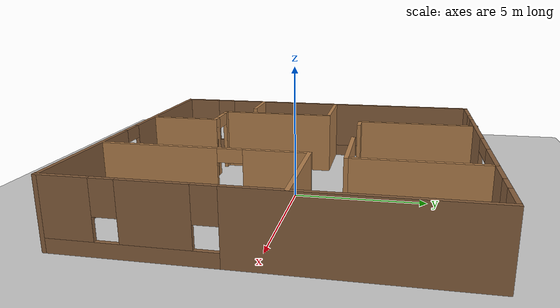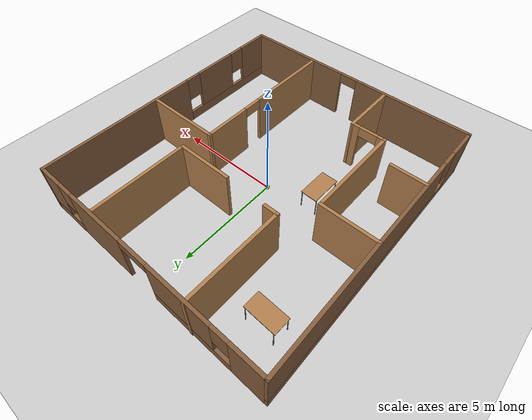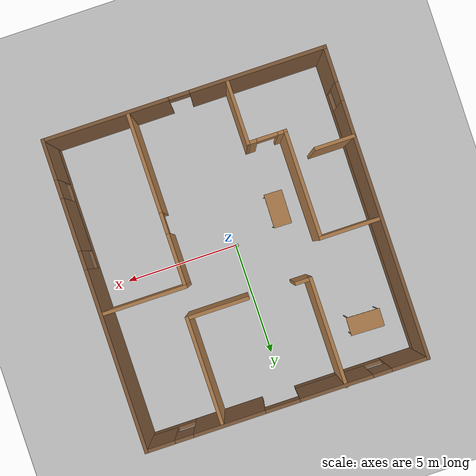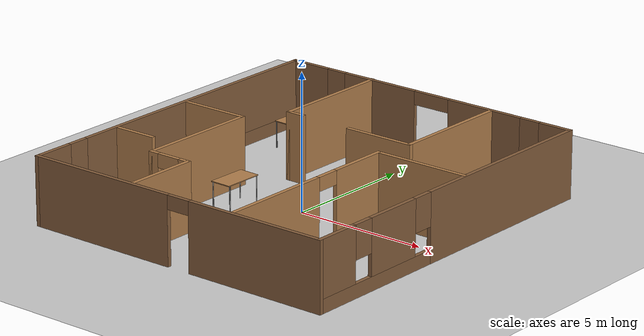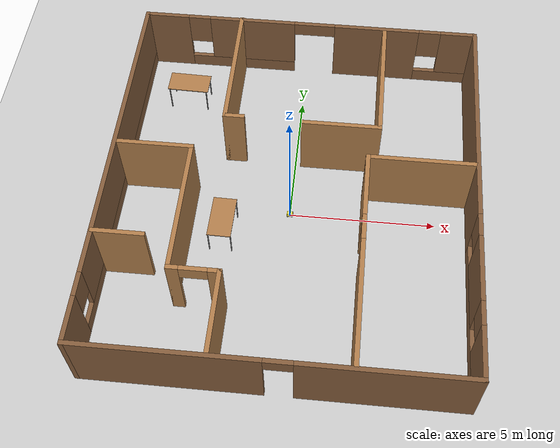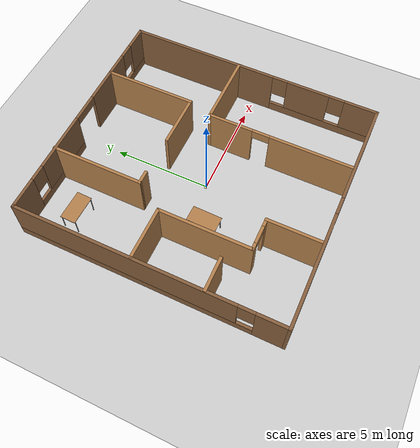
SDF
<sdf version="1.7">
 <world name="default">
  <light name="sun" type="directional">
   <pose>0 0 10 0 -0 0</pose>
   <diffuse>0.8 0.8 0.8 1</diffuse>
   <specular>0.2 0.2 0.2 1</specular>
   <attenuation>
    <range>1000</range>
    <constant>0.9</constant>
    <linear>0.01</linear>
    <quadratic>0.001</quadratic>
   </attenuation>
   <direction>-0.5 0.1 -0.9</direction>
   <spot><inner_angle>0</inner_angle><outer_angle>0</outer_angle><falloff>0</falloff></spot>
  </light>
  <model name="ground_plane">
   <static>1</static>
   <link name="link">
    <collision name="collision">
     <geometry><plane><normal>0 0 1</normal><size>100 100</size></plane></geometry>
     <surface><friction><ode><mu>100</mu><mu2>50</mu2></ode></friction></surface>
    </collision>
    <visual name="visual">
     <cast_shadows>0</cast_shadows>
     <geometry><plane><normal>0 0 1</normal><size>100 100</size></plane></geometry>
     <material>
      <script><uri>file://media/materials/scripts/gazebo.material</uri><name>Gazebo/Grey</name></script>
     </material>
    </visual>
   </link>
  </model>
  <gravity>0 0 -9.8</gravity>
  <magnetic_field>6e-06 2.3e-05 -4.2e-05</magnetic_field>
  <atmosphere type="adiabatic"/>
  <physics type="ode">
   <max_step_size>0.001</max_step_size>
   <real_time_factor>1</real_time_factor>
   <real_time_update_rate>1000</real_time_update_rate>
  </physics>
  <scene><ambient>0.4 0.4 0.4 1</ambient><background>0.7 0.7 0.7 1</background><shadows>1</shadows></scene>
  <audio><device>default</device></audio>
  <spherical_coordinates>
   <surface_model>EARTH_WGS84</surface_model>
   <latitude_deg>0</latitude_deg>
   <longitude_deg>0</longitude_deg>
   <elevation>0</elevation>
   <heading_deg>0</heading_deg>
  </spherical_coordinates>
  <model name="lds_robot">
   <link name="base_footprint">
    <inertial>
     <pose>0 0 0.050382 0 -0 0</pose>
     <mass>5.101</mass>
     <inertia>
      <ixx>0.0102322</ixx>
      <ixy>0</ixy>
      <ixz>0</ixz>
      <iyy>0.0102322</iyy>
      <iyz>0</iyz>
      <izz>0.01036</izz>
     </inertia>
    </inertial>
    <collision name="base_footprint_collision">
     <geometry><sphere><radius>0.001</radius></sphere></geometry>
    </collision>
    <collision name="base_footprint_fixed_joint_lump__base_link_collision_1">
     <pose>0 0 0.05 0 -0 0</pose>
     <geometry><box><size>0.2 0.12 0.15</size></box></geometry>
    </collision>
    <collision name="base_footprint_fixed_joint_lump__imu_link_collision_2">
     <pose>0 0 0.07 0 -0 0</pose>
     <geometry><box><size>0.02 0.02 0.02</size></box></geometry>
    </collision>
    <visual name="base_footprint_visual"><geometry><sphere><radius>0.001</radius></sphere></geometry></visual>
    <visual name="base_footprint_fixed_joint_lump__base_link_visual_1">
     <pose>0 0 0.05 0 -0 0</pose>
     <geometry><box><size>0.2 0.12 0.15</size></box></geometry>
     <material>
      <script><name>Gazebo/Yellow</name><uri>file://media/materials/scripts/gazebo.material</uri></script>
     </material>
    </visual>
    <visual name="base_footprint_fixed_joint_lump__camera_visual_2">
     <pose>0.1 0 0.05 0 -0 0</pose>
     <geometry><box><size>0.02 0.05 0.02</size></box></geometry>
     <material>
      <script><name>Gazebo/Red</name><uri>file://media/materials/scripts/gazebo.material</uri></script>
     </material>
    </visual>
    <visual name="base_footprint_fixed_joint_lump__imu_link_visual_3">
     <pose>0 0 0.07 0 -0 0</pose>
     <geometry><box><size>0.02 0.02 0.02</size></box></geometry>
    </visual>
    <visual name="base_footprint_fixed_joint_lump__laser_visual_4">
     <pose>0 0 0.14 0 -0 0</pose>
     <geometry><cylinder><length>0.03</length><radius>0.03</radius></cylinder></geometry>
     <material>
      <script><name>Gazebo/Black</name><uri>file://media/materials/scripts/gazebo.material</uri></script>
     </material>
    </visual>
    <sensor name="camera1" type="camera">
     <update_rate>30</update_rate>
     <camera name="head">
      <horizontal_fov>1.39626</horizontal_fov>
      <image><width>800</width><height>800</height><format>R8G8B8</format></image>
      <clip><near>0.02</near><far>300</far></clip>
      <noise><type>gaussian</type><mean>0</mean><stddev>0.007</stddev></noise>
     </camera>
     <plugin name="camera_controller" filename="libgazebo_ros_camera.so">
      <alwaysOn>1</alwaysOn>
      <updateRate>0.0</updateRate>
      <cameraName>rrbot/camera1</cameraName>
      <imageTopicName>image_raw</imageTopicName>
      <cameraInfoTopicName>camera_info</cameraInfoTopicName>
      <frameName>camera_link</frameName>
      <hackBaseline>0.07</hackBaseline>
      <distortionK1>0.0</distortionK1>
      <distortionK2>0.0</distortionK2>
      <distortionK3>0.0</distortionK3>
      <distortionT1>0.0</distortionT1>
      <distortionT2>0.0</distortionT2>
     </plugin>
     <pose>0.1 0 0.05 0 -0 0</pose>
    </sensor>
    <sensor name="imu_sensor" type="imu">
     <plugin name="imu_plugin" filename="libgazebo_ros_imu_sensor.so">
      <ros><namespace>/</namespace><remapping>~/out:=imu</remapping></ros>
      <initial_orientation_as_reference>0</initial_orientation_as_reference>
     </plugin>
     <always_on>1</always_on>
     <update_rate>100</update_rate>
     <visualize>1</visualize>
     <imu>
      <angular_velocity>
       <x>
        <noise type="gaussian">
         <mean>0</mean>
         <stddev>0.0002</stddev>
         <bias_mean>7.5e-06</bias_mean>
         <bias_stddev>8e-07</bias_stddev>
        </noise>
       </x>
       <y>
        <noise type="gaussian">
         <mean>0</mean>
         <stddev>0.0002</stddev>
         <bias_mean>7.5e-06</bias_mean>
         <bias_stddev>8e-07</bias_stddev>
        </noise>
       </y>
       <z>
        <noise type="gaussian">
         <mean>0</mean>
         <stddev>0.0002</stddev>
         <bias_mean>7.5e-06</bias_mean>
         <bias_stddev>8e-07</bias_stddev>
        </noise>
       </z>
      </angular_velocity>
      <linear_acceleration>
       <x>
        <noise type="gaussian">
         <mean>0</mean>
         <stddev>0.017</stddev>
         <bias_mean>0.1</bias_mean>
         <bias_stddev>0.001</bias_stddev>
        </noise>
       </x>
       <y>
        <noise type="gaussian">
         <mean>0</mean>
         <stddev>0.017</stddev>
         <bias_mean>0.1</bias_mean>
         <bias_stddev>0.001</bias_stddev>
        </noise>
       </y>
       <z>
        <noise type="gaussian">
         <mean>0</mean>
         <stddev>0.017</stddev>
         <bias_mean>0.1</bias_mean>
         <bias_stddev>0.001</bias_stddev>
        </noise>
       </z>
      </linear_acceleration>
     </imu>
     <pose>0 0 0.07 0 -0 0</pose>
    </sensor>
    <sensor name="laser_sensor" type="ray">
     <always_on>1</always_on>
     <visualize>1</visualize>
     <update_rate>5</update_rate>
     <ray>
      <scan>
       <horizontal>
        <samples>360</samples>
        <resolution>1</resolution>
        <min_angle>0</min_angle>
        <max_angle>6.28</max_angle>
       </horizontal>
       <vertical><samples>1</samples><min_angle>0</min_angle><max_angle>0</max_angle></vertical>
      </scan>
      <range><min>0.12</min><max>3.5</max><resolution>0.015</resolution></range>
      <noise><type>gaussian</type><mean>0</mean><stddev>0.01</stddev></noise>
     </ray>
     <plugin name="laserscan" filename="libgazebo_ros_ray_sensor.so">
      <ros><remapping>~/out:=scan</remapping></ros>
      <output_type>sensor_msgs/LaserScan</output_type>
      <frame_name>laser</frame_name>
     </plugin>
     <pose>0 0 0.14 0 -0 0</pose>
    </sensor>
   </link>
   <joint name="back_left_wheel_joint" type="revolute">
    <pose relative_to="base_footprint">-0.075 0.06 -0.015 0 -0 0</pose>
    <parent>base_footprint</parent>
    <child>back_left_wheel</child>
    <axis>
     <xyz>0 1 0</xyz>
     <limit><lower>-1e+16</lower><upper>1e+16</upper></limit>
     <dynamics><spring_reference>0</spring_reference><spring_stiffness>0</spring_stiffness></dynamics>
    </axis>
   </joint>
   <link name="back_left_wheel">
    <pose relative_to="back_left_wheel_joint">0 0 0 0 -0 0</pose>
    <inertial>
     <mass>0.2</mass>
     <inertia>
      <ixx>0.000190417</ixx>
      <ixy>0</ixy>
      <ixz>0</ixz>
      <iyy>0.0001904</iyy>
      <iyz>0</iyz>
      <izz>0.00036</izz>
     </inertia>
    </inertial>
    <collision name="back_left_wheel_collision">
     <pose>0 0 0 1.57 -0 0</pose>
     <geometry><cylinder><length>0.02</length><radius>0.025</radius></cylinder></geometry>
    </collision>
    <visual name="back_left_wheel_visual">
     <pose>0 0 0 1.57 -0 0</pose>
     <geometry><cylinder><length>0.02</length><radius>0.025</radius></cylinder></geometry>
     <material>
      <script><name>Gazebo/Black</name><uri>file://media/materials/scripts/gazebo.material</uri></script>
     </material>
    </visual>
   </link>
   <joint name="back_right_wheel_joint" type="revolute">
    <pose relative_to="base_footprint">-0.075 -0.06 -0.015 0 -0 0</pose>
    <parent>base_footprint</parent>
    <child>back_right_wheel</child>
    <axis>
     <xyz>0 1 0</xyz>
     <limit><lower>-1e+16</lower><upper>1e+16</upper></limit>
     <dynamics><spring_reference>0</spring_reference><spring_stiffness>0</spring_stiffness></dynamics>
    </axis>
   </joint>
   <link name="back_right_wheel">
    <pose relative_to="back_right_wheel_joint">0 0 0 0 -0 0</pose>
    <inertial>
     <mass>0.2</mass>
     <inertia>
      <ixx>0.000190417</ixx>
      <ixy>0</ixy>
      <ixz>0</ixz>
      <iyy>0.0001904</iyy>
      <iyz>0</iyz>
      <izz>0.00036</izz>
     </inertia>
    </inertial>
    <collision name="back_right_wheel_collision">
     <pose>0 0 0 1.57 -0 0</pose>
     <geometry><cylinder><length>0.02</length><radius>0.025</radius></cylinder></geometry>
    </collision>
    <visual name="back_right_wheel_visual">
     <pose>0 0 0 1.57 -0 0</pose>
     <geometry><cylinder><length>0.02</length><radius>0.025</radius></cylinder></geometry>
     <material>
      <script><name>Gazebo/Black</name><uri>file://media/materials/scripts/gazebo.material</uri></script>
     </material>
    </visual>
   </link>
   <joint name="front_left_wheel_joint" type="revolute">
    <pose relative_to="base_footprint">0.075 0.06 -0.015 0 -0 0</pose>
    <parent>base_footprint</parent>
    <child>front_left_wheel</child>
    <axis>
     <xyz>0 1 0</xyz>
     <limit><lower>-1e+16</lower><upper>1e+16</upper></limit>
     <dynamics><spring_reference>0</spring_reference><spring_stiffness>0</spring_stiffness></dynamics>
    </axis>
   </joint>
   <link name="front_left_wheel">
    <pose relative_to="front_left_wheel_joint">0 0 0 0 -0 0</pose>
    <inertial>
     <mass>0.2</mass>
     <inertia>
      <ixx>0.000190417</ixx>
      <ixy>0</ixy>
      <ixz>0</ixz>
      <iyy>0.0001904</iyy>
      <iyz>0</iyz>
      <izz>0.00036</izz>
     </inertia>
    </inertial>
    <collision name="front_left_wheel_collision">
     <pose>0 0 0 1.57 -0 0</pose>
     <geometry><cylinder><length>0.02</length><radius>0.025</radius></cylinder></geometry>
    </collision>
    <visual name="front_left_wheel_visual">
     <pose>0 0 0 1.57 -0 0</pose>
     <geometry><cylinder><length>0.02</length><radius>0.025</radius></cylinder></geometry>
     <material>
      <script><name>Gazebo/Black</name><uri>file://media/materials/scripts/gazebo.material</uri></script>
     </material>
    </visual>
   </link>
   <joint name="front_right_wheel_joint" type="revolute">
    <pose relative_to="base_footprint">0.075 -0.06 -0.015 0 -0 0</pose>
    <parent>base_footprint</parent>
    <child>front_right_wheel</child>
    <axis>
     <xyz>0 1 0</xyz>
     <limit><lower>-1e+16</lower><upper>1e+16</upper></limit>
     <dynamics><spring_reference>0</spring_reference><spring_stiffness>0</spring_stiffness></dynamics>
    </axis>
   </joint>
   <link name="front_right_wheel">
    <pose relative_to="front_right_wheel_joint">0 0 0 0 -0 0</pose>
    <inertial>
     <mass>0.2</mass>
     <inertia>
      <ixx>0.000190417</ixx>
      <ixy>0</ixy>
      <ixz>0</ixz>
      <iyy>0.0001904</iyy>
      <iyz>0</iyz>
      <izz>0.00036</izz>
     </inertia>
    </inertial>
    <collision name="front_right_wheel_collision">
     <pose>0 0 0 1.57 -0 0</pose>
     <geometry><cylinder><length>0.02</length><radius>0.025</radius></cylinder></geometry>
    </collision>
    <visual name="front_right_wheel_visual">
     <pose>0 0 0 1.57 -0 0</pose>
     <geometry><cylinder><length>0.02</length><radius>0.025</radius></cylinder></geometry>
     <material>
      <script><name>Gazebo/Black</name><uri>file://media/materials/scripts/gazebo.material</uri></script>
     </material>
    </visual>
   </link>
   <plugin name="front_diff_drive" filename="libgazebo_ros_diff_drive.so">
    <left_joint>front_left_wheel_joint</left_joint>
    <right_joint>front_right_wheel_joint</right_joint>
    <wheel_separation>0.064</wheel_separation>
    <wheel_diameter>0.05</wheel_diameter>
    <max_wheel_torque>200</max_wheel_torque>
    <max_wheel_acceleration>10.0</max_wheel_acceleration>
    <odometry_frame>odom</odometry_frame>
    <robot_base_frame>base_footprint</robot_base_frame>
    <publish_odom>1</publish_odom>
    <publish_odom_tf>1</publish_odom_tf>
    <publish_wheel_tf>1</publish_wheel_tf>
   </plugin>
   <static>0</static>
   <plugin name="back_diff_drive" filename="libgazebo_ros_diff_drive.so">
    <left_joint>back_left_wheel_joint</left_joint>
    <right_joint>back_right_wheel_joint</right_joint>
    <wheel_separation>0.064</wheel_separation>
    <wheel_diameter>0.05</wheel_diameter>
    <max_wheel_torque>200</max_wheel_torque>
    <max_wheel_acceleration>10.0</max_wheel_acceleration>
    <odometry_frame>odom</odometry_frame>
    <robot_base_frame>base_footprint</robot_base_frame>
    <publish_odom>1</publish_odom>
    <publish_odom_tf>1</publish_odom_tf>
    <publish_wheel_tf>1</publish_wheel_tf>
   </plugin>
   <pose>-0.005937 0.006447 0.040007 1.7e-05 2e-06 0.000673</pose>
  </model>
  <model name="norsing_home">
   <pose>0.077966 0.174221 0 0 -0 0</pose>
   <link name="Wall_0">
    <pose>0 6.65961 0 0 -0 0</pose>
    <visual name="Wall_0_Visual_0">
     <pose>-5.3111 0 1.25 0 -0 0</pose>
     <geometry><box><size>1.62779 0.15 2.5</size></box></geometry>
     <material>
      <script><uri>file://media/materials/scripts/gazebo.material</uri><name>Gazebo/Grey</name></script>
      <ambient>0.52549 0.368627 0.235294 1</ambient>
     </material>
     <meta><layer>0</layer></meta>
    </visual>
    <collision name="Wall_0_Collision_0">
     <geometry><box><size>1.62779 0.15 2.5</size></box></geometry>
     <pose>-5.3111 0 1.25 0 -0 0</pose>
    </collision>
    <visual name="Wall_0_Visual_1">
     <pose>2.47144 0 1.25 0 -0 0</pose>
     <geometry><box><size>3.08683 0.15 2.5</size></box></geometry>
     <material>
      <script><uri>file://media/materials/scripts/gazebo.material</uri><name>Gazebo/Grey</name></script>
      <ambient>0.52549 0.368627 0.235294 1</ambient>
     </material>
     <meta><layer>0</layer></meta>
    </visual>
    <collision name="Wall_0_Collision_1">
     <geometry><box><size>3.08683 0.15 2.5</size></box></geometry>
     <pose>2.47144 0 1.25 0 -0 0</pose>
    </collision>
    <visual name="Wall_0_Visual_2">
     <pose>-2.52719 0 0.25 0 -0 0</pose>
     <geometry><box><size>3.94003 0.15 0.5</size></box></geometry>
     <material>
      <script><uri>file://media/materials/scripts/gazebo.material</uri><name>Gazebo/Grey</name></script>
      <ambient>0.52549 0.368627 0.235294 1</ambient>
     </material>
     <meta><layer>0</layer></meta>
    </visual>
    <collision name="Wall_0_Collision_2">
     <geometry><box><size>3.94003 0.15 0.5</size></box></geometry>
     <pose>-2.52719 0 0.25 0 -0 0</pose>
    </collision>
    <visual name="Wall_0_Visual_3">
     <pose>5.06993 0 0.25 0 -0 0</pose>
     <geometry><box><size>2.11014 0.15 0.5</size></box></geometry>
     <material>
      <script><uri>file://media/materials/scripts/gazebo.material</uri><name>Gazebo/Grey</name></script>
      <ambient>0.52549 0.368627 0.235294 1</ambient>
     </material>
     <meta><layer>0</layer></meta>
    </visual>
    <collision name="Wall_0_Collision_3">
     <geometry><box><size>2.11014 0.15 0.5</size></box></geometry>
     <pose>5.06993 0 0.25 0 -0 0</pose>
    </collision>
    <visual name="Wall_0_Visual_4">
     <pose>-2.12719 0 1.5 0 -0 0</pose>
     <geometry><box><size>3.14003 0.15 2</size></box></geometry>
     <material>
      <script><uri>file://media/materials/scripts/gazebo.material</uri><name>Gazebo/Grey</name></script>
      <ambient>0.52549 0.368627 0.235294 1</ambient>
     </material>
     <meta><layer>0</layer></meta>
    </visual>
    <collision name="Wall_0_Collision_4">
     <geometry><box><size>3.14003 0.15 2</size></box></geometry>
     <pose>-2.12719 0 1.5 0 -0 0</pose>
    </collision>
    <visual name="Wall_0_Visual_5">
     <pose>-2.12719 0 1.5 0 -0 0</pose>
     <geometry><box><size>3.14003 0.15 2</size></box></geometry>
     <material>
      <script><uri>file://media/materials/scripts/gazebo.material</uri><name>Gazebo/Grey</name></script>
      <ambient>0.52549 0.368627 0.235294 1</ambient>
     </material>
     <meta><layer>0</layer></meta>
    </visual>
    <collision name="Wall_0_Collision_5">
     <geometry><box><size>3.14003 0.15 2</size></box></geometry>
     <pose>-2.12719 0 1.5 0 -0 0</pose>
    </collision>
    <visual name="Wall_0_Visual_6">
     <pose>5.46993 0 1.5 0 -0 0</pose>
     <geometry><box><size>1.31014 0.15 2</size></box></geometry>
     <material>
      <script><uri>file://media/materials/scripts/gazebo.material</uri><name>Gazebo/Grey</name></script>
      <ambient>0.52549 0.368627 0.235294 1</ambient>
     </material>
     <meta><layer>0</layer></meta>
    </visual>
    <collision name="Wall_0_Collision_6">
     <geometry><box><size>1.31014 0.15 2</size></box></geometry>
     <pose>5.46993 0 1.5 0 -0 0</pose>
    </collision>
    <visual name="Wall_0_Visual_7">
     <pose>-4.09721 0 1.9 0 -0 0</pose>
     <geometry><box><size>0.8 0.15 1.2</size></box></geometry>
     <material>
      <script><uri>file://media/materials/scripts/gazebo.material</uri><name>Gazebo/Grey</name></script>
      <ambient>0.52549 0.368627 0.235294 1</ambient>
     </material>
     <meta><layer>0</layer></meta>
    </visual>
    <collision name="Wall_0_Collision_7">
     <geometry><box><size>0.8 0.15 1.2</size></box></geometry>
     <pose>-4.09721 0 1.9 0 -0 0</pose>
    </collision>
    <visual name="Wall_0_Visual_8">
     <pose>4.41486 0 1.9 0 -0 0</pose>
     <geometry><box><size>0.8 0.15 1.2</size></box></geometry>
     <material>
      <script><uri>file://media/materials/scripts/gazebo.material</uri><name>Gazebo/Grey</name></script>
      <ambient>0.52549 0.368627 0.235294 1</ambient>
     </material>
     <meta><layer>0</layer></meta>
    </visual>
    <collision name="Wall_0_Collision_8">
     <geometry><box><size>0.8 0.15 1.2</size></box></geometry>
     <pose>4.41486 0 1.9 0 -0 0</pose>
    </collision>
    <visual name="Wall_0_Visual_9">
     <pose>0.185425 0 2.25 0 -0 0</pose>
     <geometry><box><size>1.4852 0.15 0.5</size></box></geometry>
     <material>
      <script><uri>file://media/materials/scripts/gazebo.material</uri><name>Gazebo/Grey</name></script>
      <ambient>0.52549 0.368627 0.235294 1</ambient>
     </material>
     <meta><layer>0</layer></meta>
    </visual>
    <collision name="Wall_0_Collision_9">
     <geometry><box><size>1.4852 0.15 0.5</size></box></geometry>
     <pose>0.185425 0 2.25 0 -0 0</pose>
    </collision>
    <visual name="Wall_0_Visual_10">
     <pose>0.185425 0 2.25 0 -0 0</pose>
     <geometry><box><size>1.4852 0.15 0.5</size></box></geometry>
     <material>
      <script><uri>file://media/materials/scripts/gazebo.material</uri><name>Gazebo/Grey</name></script>
      <ambient>0.52549 0.368627 0.235294 1</ambient>
     </material>
     <meta><layer>0</layer></meta>
    </visual>
    <collision name="Wall_0_Collision_10">
     <geometry><box><size>1.4852 0.15 0.5</size></box></geometry>
     <pose>0.185425 0 2.25 0 -0 0</pose>
    </collision>
   </link>
   <link name="Wall_1">
    <pose>6.05 -0.015386 0 0 -0 -1.5708</pose>
    <visual name="Wall_1_Visual_0">
     <pose>-2.81232 0 1.25 0 -0 0</pose>
     <geometry><box><size>7.87536 0.15 2.5</size></box></geometry>
     <material>
      <script><uri>file://media/materials/scripts/gazebo.material</uri><name>Gazebo/Grey</name></script>
      <ambient>0.52549 0.368627 0.235294 1</ambient>
     </material>
     <meta><layer>0</layer></meta>
    </visual>
    <collision name="Wall_1_Collision_0">
     <geometry><box><size>7.87536 0.15 2.5</size></box></geometry>
     <pose>-2.81232 0 1.25 0 -0 0</pose>
    </collision>
    <visual name="Wall_1_Visual_1">
     <pose>3.93768 0 0.25 0 -0 0</pose>
     <geometry><box><size>5.62464 0.15 0.5</size></box></geometry>
     <material>
      <script><uri>file://media/materials/scripts/gazebo.material</uri><name>Gazebo/Grey</name></script>
      <ambient>0.52549 0.368627 0.235294 1</ambient>
     </material>
     <meta><layer>0</layer></meta>
    </visual>
    <collision name="Wall_1_Collision_1">
     <geometry><box><size>5.62464 0.15 0.5</size></box></geometry>
     <pose>3.93768 0 0.25 0 -0 0</pose>
    </collision>
    <visual name="Wall_1_Visual_2">
     <pose>3.05487 0 1.5 0 -0 0</pose>
     <geometry><box><size>2.25902 0.15 2</size></box></geometry>
     <material>
      <script><uri>file://media/materials/scripts/gazebo.material</uri><name>Gazebo/Grey</name></script>
      <ambient>0.52549 0.368627 0.235294 1</ambient>
     </material>
     <meta><layer>0</layer></meta>
    </visual>
    <collision name="Wall_1_Collision_2">
     <geometry><box><size>2.25902 0.15 2</size></box></geometry>
     <pose>3.05487 0 1.5 0 -0 0</pose>
    </collision>
    <visual name="Wall_1_Visual_3">
     <pose>5.86719 0 1.5 0 -0 0</pose>
     <geometry><box><size>1.76562 0.15 2</size></box></geometry>
     <material>
      <script><uri>file://media/materials/scripts/gazebo.material</uri><name>Gazebo/Grey</name></script>
      <ambient>0.52549 0.368627 0.235294 1</ambient>
     </material>
     <meta><layer>0</layer></meta>
    </visual>
    <collision name="Wall_1_Collision_3">
     <geometry><box><size>1.76562 0.15 2</size></box></geometry>
     <pose>5.86719 0 1.5 0 -0 0</pose>
    </collision>
    <visual name="Wall_1_Visual_4">
     <pose>1.52536 0 1.9 0 -0 0</pose>
     <geometry><box><size>0.8 0.15 1.2</size></box></geometry>
     <material>
      <script><uri>file://media/materials/scripts/gazebo.material</uri><name>Gazebo/Grey</name></script>
      <ambient>0.52549 0.368627 0.235294 1</ambient>
     </material>
     <meta><layer>0</layer></meta>
    </visual>
    <collision name="Wall_1_Collision_4">
     <geometry><box><size>0.8 0.15 1.2</size></box></geometry>
     <pose>1.52536 0 1.9 0 -0 0</pose>
    </collision>
    <visual name="Wall_1_Visual_5">
     <pose>4.58438 0 1.9 0 -0 0</pose>
     <geometry><box><size>0.8 0.15 1.2</size></box></geometry>
     <material>
      <script><uri>file://media/materials/scripts/gazebo.material</uri><name>Gazebo/Grey</name></script>
      <ambient>0.52549 0.368627 0.235294 1</ambient>
     </material>
     <meta><layer>0</layer></meta>
    </visual>
    <collision name="Wall_1_Collision_5">
     <geometry><box><size>0.8 0.15 1.2</size></box></geometry>
     <pose>4.58438 0 1.9 0 -0 0</pose>
    </collision>
   </link>
   <link name="Wall_11">
    <collision name="Wall_11_Collision">
     <geometry><box><size>1.75 0.15 2.5</size></box></geometry>
     <pose>0 0 1.25 0 -0 0</pose>
    </collision>
    <visual name="Wall_11_Visual">
     <pose>0 0 1.25 0 -0 0</pose>
     <geometry><box><size>1.75 0.15 2.5</size></box></geometry>
     <material>
      <script><uri>file://media/materials/scripts/gazebo.material</uri><name>Gazebo/Wood</name></script>
      <ambient>1 1 1 1</ambient>
     </material>
     <meta><layer>0</layer></meta>
    </visual>
    <pose>-5.21509 -2.87357 0 0 -0 0</pose>
   </link>
   <link name="Wall_13">
    <collision name="Wall_13_Collision">
     <geometry><box><size>3.75 0.15 2.5</size></box></geometry>
     <pose>0 0 1.25 0 -0 0</pose>
    </collision>
    <visual name="Wall_13_Visual">
     <pose>0 0 1.25 0 -0 0</pose>
     <geometry><box><size>3.75 0.15 2.5</size></box></geometry>
     <material>
      <script><uri>file://media/materials/scripts/gazebo.material</uri><name>Gazebo/Wood</name></script>
      <ambient>1 1 1 1</ambient>
     </material>
     <meta><layer>0</layer></meta>
    </visual>
    <pose>4.22502 0.787848 0 0 -0 3.14159</pose>
   </link>
   <link name="Wall_14">
    <pose>2.42502 -2.88715 0 0 -0 -1.5708</pose>
    <visual name="Wall_14_Visual_0">
     <pose>-2.57328 0 1.25 0 -0 0</pose>
     <geometry><box><size>2.35345 0.15 2.5</size></box></geometry>
     <material>
      <script><uri>file://media/materials/scripts/gazebo.material</uri><name>Gazebo/Wood</name></script>
      <ambient>1 1 1 1</ambient>
     </material>
     <meta><layer>0</layer></meta>
    </visual>
    <collision name="Wall_14_Collision_0">
     <geometry><box><size>2.35345 0.15 2.5</size></box></geometry>
     <pose>-2.57328 0 1.25 0 -0 0</pose>
    </collision>
    <visual name="Wall_14_Visual_1">
     <pose>1.62672 0 1.25 0 -0 0</pose>
     <geometry><box><size>4.24655 0.15 2.5</size></box></geometry>
     <material>
      <script><uri>file://media/materials/scripts/gazebo.material</uri><name>Gazebo/Wood</name></script>
      <ambient>1 1 1 1</ambient>
     </material>
     <meta><layer>0</layer></meta>
    </visual>
    <collision name="Wall_14_Collision_1">
     <geometry><box><size>4.24655 0.15 2.5</size></box></geometry>
     <pose>1.62672 0 1.25 0 -0 0</pose>
    </collision>
    <visual name="Wall_14_Visual_2">
     <pose>-0.94655 0 2.25 0 -0 0</pose>
     <geometry><box><size>0.9 0.15 0.5</size></box></geometry>
     <material>
      <script><uri>file://media/materials/scripts/gazebo.material</uri><name>Gazebo/Wood</name></script>
      <ambient>1 1 1 1</ambient>
     </material>
     <meta><layer>0</layer></meta>
    </visual>
    <collision name="Wall_14_Collision_2">
     <geometry><box><size>0.9 0.15 0.5</size></box></geometry>
     <pose>-0.94655 0 2.25 0 -0 0</pose>
    </collision>
   </link>
   <link name="Wall_16">
    <collision name="Wall_16_Collision">
     <geometry><box><size>4.75 0.15 2.5</size></box></geometry>
     <pose>0 0 1.25 0 -0 0</pose>
    </collision>
    <visual name="Wall_16_Visual">
     <pose>0 0 1.25 0 -0 0</pose>
     <geometry><box><size>4.75 0.15 2.5</size></box></geometry>
     <material>
      <script><uri>file://media/materials/scripts/gazebo.material</uri><name>Gazebo/Wood</name></script>
      <ambient>1 1 1 1</ambient>
     </material>
     <meta><layer>0</layer></meta>
    </visual>
    <pose>2.76477 4.33719 0 0 -0 -1.5708</pose>
   </link>
   <link name="Wall_17">
    <collision name="Wall_17_Collision">
     <geometry><box><size>2.75 0.15 2.5</size></box></geometry>
     <pose>0 0 1.25 0 -0 0</pose>
    </collision>
    <visual name="Wall_17_Visual">
     <pose>0 0 1.25 0 -0 0</pose>
     <geometry><box><size>2.75 0.15 2.5</size></box></geometry>
     <material>
      <script><uri>file://media/materials/scripts/gazebo.material</uri><name>Gazebo/Wood</name></script>
      <ambient>1 1 1 1</ambient>
     </material>
     <meta><layer>0</layer></meta>
    </visual>
    <pose>1.46477 2.03719 0 0 -0 3.14159</pose>
   </link>
   <link name="Wall_19">
    <collision name="Wall_19_Collision">
     <geometry><box><size>4.75 0.15 2.5</size></box></geometry>
     <pose>0 0 1.25 0 -0 0</pose>
    </collision>
    <visual name="Wall_19_Visual">
     <pose>0 0 1.25 0 -0 0</pose>
     <geometry><box><size>4.75 0.15 2.5</size></box></geometry>
     <material>
      <script><uri>file://media/materials/scripts/gazebo.material</uri><name>Gazebo/Wood</name></script>
      <ambient>1 1 1 1</ambient>
     </material>
     <meta><layer>0</layer></meta>
    </visual>
    <pose>-2.52867 4.39039 0 0 -0 -1.5708</pose>
   </link>
   <link name="Wall_2">
    <pose>0 -6.69039 0 0 -0 3.14159</pose>
    <visual name="Wall_2_Visual_0">
     <pose>-3.39351 0 1.25 0 -0 0</pose>
     <geometry><box><size>5.46297 0.15 2.5</size></box></geometry>
     <material>
      <script><uri>file://media/materials/scripts/gazebo.material</uri><name>Gazebo/Grey</name></script>
      <ambient>0.52549 0.368627 0.235294 1</ambient>
     </material>
     <meta><layer>0</layer></meta>
    </visual>
    <collision name="Wall_2_Collision_0">
     <geometry><box><size>5.46297 0.15 2.5</size></box></geometry>
     <pose>-3.39351 0 1.25 0 -0 0</pose>
    </collision>
    <visual name="Wall_2_Visual_1">
     <pose>3.18149 0 1.25 0 -0 0</pose>
     <geometry><box><size>5.88703 0.15 2.5</size></box></geometry>
     <material>
      <script><uri>file://media/materials/scripts/gazebo.material</uri><name>Gazebo/Grey</name></script>
      <ambient>0.52549 0.368627 0.235294 1</ambient>
     </material>
     <meta><layer>0</layer></meta>
    </visual>
    <collision name="Wall_2_Collision_1">
     <geometry><box><size>5.88703 0.15 2.5</size></box></geometry>
     <pose>3.18149 0 1.25 0 -0 0</pose>
    </collision>
    <visual name="Wall_2_Visual_2">
     <pose>-0.212026 0 2.25 0 -0 0</pose>
     <geometry><box><size>0.9 0.15 0.5</size></box></geometry>
     <material>
      <script><uri>file://media/materials/scripts/gazebo.material</uri><name>Gazebo/Grey</name></script>
      <ambient>0.52549 0.368627 0.235294 1</ambient>
     </material>
     <meta><layer>0</layer></meta>
    </visual>
    <collision name="Wall_2_Collision_2">
     <geometry><box><size>0.9 0.15 0.5</size></box></geometry>
     <pose>-0.212026 0 2.25 0 -0 0</pose>
    </collision>
   </link>
   <link name="Wall_20">
    <collision name="Wall_20_Collision">
     <geometry><box><size>0.75 0.15 2.5</size></box></geometry>
     <pose>0 0 1.25 0 -0 0</pose>
    </collision>
    <visual name="Wall_20_Visual">
     <pose>0 0 1.25 0 -0 0</pose>
     <geometry><box><size>0.75 0.15 2.5</size></box></geometry>
     <material>
      <script><uri>file://media/materials/scripts/gazebo.material</uri><name>Gazebo/Wood</name></script>
      <ambient>1 1 1 1</ambient>
     </material>
     <meta><layer>0</layer></meta>
    </visual>
    <pose>-2.22867 2.09039 0 0 -0 0</pose>
   </link>
   <link name="Wall_3">
    <pose>-6.05 -0.015386 0 0 -0 1.5708</pose>
    <visual name="Wall_3_Visual_0">
     <pose>-5.96029 0 1.25 0 -0 0</pose>
     <geometry><box><size>1.57942 0.15 2.5</size></box></geometry>
     <material>
      <script><uri>file://media/materials/scripts/gazebo.material</uri><name>Gazebo/Grey</name></script>
      <ambient>0.52549 0.368627 0.235294 1</ambient>
     </material>
     <meta><layer>0</layer></meta>
    </visual>
    <collision name="Wall_3_Collision_0">
     <geometry><box><size>1.57942 0.15 2.5</size></box></geometry>
     <pose>-5.96029 0 1.25 0 -0 0</pose>
    </collision>
    <visual name="Wall_3_Visual_1">
     <pose>0.789708 0 0.25 0 -0 0</pose>
     <geometry><box><size>11.9206 0.15 0.5</size></box></geometry>
     <material>
      <script><uri>file://media/materials/scripts/gazebo.material</uri><name>Gazebo/Grey</name></script>
      <ambient>0.52549 0.368627 0.235294 1</ambient>
     </material>
     <meta><layer>0</layer></meta>
    </visual>
    <collision name="Wall_3_Collision_1">
     <geometry><box><size>11.9206 0.15 0.5</size></box></geometry>
     <pose>0.789708 0 0.25 0 -0 0</pose>
    </collision>
    <visual name="Wall_3_Visual_2">
     <pose>1.18971 0 1.5 0 -0 0</pose>
     <geometry><box><size>11.1206 0.15 2</size></box></geometry>
     <material>
      <script><uri>file://media/materials/scripts/gazebo.material</uri><name>Gazebo/Grey</name></script>
      <ambient>0.52549 0.368627 0.235294 1</ambient>
     </material>
     <meta><layer>0</layer></meta>
    </visual>
    <collision name="Wall_3_Collision_2">
     <geometry><box><size>11.1206 0.15 2</size></box></geometry>
     <pose>1.18971 0 1.5 0 -0 0</pose>
    </collision>
    <visual name="Wall_3_Visual_3">
     <pose>-4.77058 0 1.9 0 -0 0</pose>
     <geometry><box><size>0.8 0.15 1.2</size></box></geometry>
     <material>
      <script><uri>file://media/materials/scripts/gazebo.material</uri><name>Gazebo/Grey</name></script>
      <ambient>0.52549 0.368627 0.235294 1</ambient>
     </material>
     <meta><layer>0</layer></meta>
    </visual>
    <collision name="Wall_3_Collision_3">
     <geometry><box><size>0.8 0.15 1.2</size></box></geometry>
     <pose>-4.77058 0 1.9 0 -0 0</pose>
    </collision>
   </link>
   <link name="Wall_5">
    <collision name="Wall_5_Collision">
     <geometry><box><size>2.75 0.15 2.5</size></box></geometry>
     <pose>0 0 1.25 0 -0 0</pose>
    </collision>
    <visual name="Wall_5_Visual">
     <pose>0 0 1.25 0 -0 0</pose>
     <geometry><box><size>2.75 0.15 2.5</size></box></geometry>
     <material>
      <script><uri>file://media/materials/scripts/gazebo.material</uri><name>Gazebo/Wood</name></script>
      <ambient>1 1 1 1</ambient>
     </material>
     <meta><layer>0</layer></meta>
    </visual>
    <pose>-4.74661 0.652163 0 0 -0 0</pose>
   </link>
   <link name="Wall_6">
    <collision name="Wall_6_Collision">
     <geometry><box><size>4.75 0.15 2.5</size></box></geometry>
     <pose>0 0 1.25 0 -0 0</pose>
    </collision>
    <visual name="Wall_6_Visual">
     <pose>0 0 1.25 0 -0 0</pose>
     <geometry><box><size>4.75 0.15 2.5</size></box></geometry>
     <material>
      <script><uri>file://media/materials/scripts/gazebo.material</uri><name>Gazebo/Wood</name></script>
      <ambient>0.52549 0.368627 0.235294 1</ambient>
     </material>
     <meta><layer>0</layer></meta>
    </visual>
    <pose>-3.44661 -1.64784 0 0 -0 -1.5708</pose>
   </link>
   <link name="Wall_7">
    <pose>-2.64661 -3.94784 0 0 -0 0</pose>
    <visual name="Wall_7_Visual_0">
     <pose>-0.672967 0 1.25 0 -0 0</pose>
     <geometry><box><size>0.404066 0.15 2.5</size></box></geometry>
     <material>
      <script><uri>file://media/materials/scripts/gazebo.material</uri><name>Gazebo/Wood</name></script>
      <ambient>1 1 1 1</ambient>
     </material>
     <meta><layer>0</layer></meta>
    </visual>
    <collision name="Wall_7_Collision_0">
     <geometry><box><size>0.404066 0.15 2.5</size></box></geometry>
     <pose>-0.672967 0 1.25 0 -0 0</pose>
    </collision>
    <visual name="Wall_7_Visual_1">
     <pose>0.652033 0 1.25 0 -0 0</pose>
     <geometry><box><size>0.445934 0.15 2.5</size></box></geometry>
     <material>
      <script><uri>file://media/materials/scripts/gazebo.material</uri><name>Gazebo/Wood</name></script>
      <ambient>1 1 1 1</ambient>
     </material>
     <meta><layer>0</layer></meta>
    </visual>
    <collision name="Wall_7_Collision_1">
     <geometry><box><size>0.445934 0.15 2.5</size></box></geometry>
     <pose>0.652033 0 1.25 0 -0 0</pose>
    </collision>
    <visual name="Wall_7_Visual_2">
     <pose>-0.020934 0 2.25 0 -0 0</pose>
     <geometry><box><size>0.9 0.15 0.5</size></box></geometry>
     <material>
      <script><uri>file://media/materials/scripts/gazebo.material</uri><name>Gazebo/Wood</name></script>
      <ambient>1 1 1 1</ambient>
     </material>
     <meta><layer>0</layer></meta>
    </visual>
    <collision name="Wall_7_Collision_2">
     <geometry><box><size>0.9 0.15 0.5</size></box></geometry>
     <pose>-0.020934 0 2.25 0 -0 0</pose>
    </collision>
   </link>
   <link name="Wall_9">
    <collision name="Wall_9_Collision">
     <geometry><box><size>2.75 0.15 2.5</size></box></geometry>
     <pose>0 0 1.25 0 -0 0</pose>
    </collision>
    <visual name="Wall_9_Visual">
     <pose>0 0 1.25 0 -0 0</pose>
     <geometry><box><size>2.75 0.15 2.5</size></box></geometry>
     <material>
      <script><uri>file://media/materials/scripts/gazebo.material</uri><name>Gazebo/Wood</name></script>
      <ambient>1 1 1 1</ambient>
     </material>
     <meta><layer>0</layer></meta>
    </visual>
    <pose>-1.84661 -5.24784 0 0 -0 -1.5708</pose>
   </link>
   <static>1</static>
  </model>
  <model name="table">
   <static>1</static>
   <link name="link">
    <collision name="surface">
     <pose>0 0 1 0 -0 0</pose>
     <geometry><box><size>1.5 0.8 0.03</size></box></geometry>
     <surface><friction><ode><mu>0.6</mu><mu2>0.6</mu2></ode></friction></surface>
    </collision>
    <visual name="visual1">
     <pose>0 0 1 0 -0 0</pose>
     <geometry><box><size>1.5 0.8 0.03</size></box></geometry>
     <material>
      <script><uri>file://media/materials/scripts/gazebo.material</uri><name>Gazebo/Wood</name></script>
     </material>
    </visual>
    <collision name="front_left_leg">
     <pose>0.68 0.38 0.5 0 -0 0</pose>
     <geometry><cylinder><radius>0.02</radius><length>1</length></cylinder></geometry>
    </collision>
    <visual name="front_left_leg">
     <pose>0.68 0.38 0.5 0 -0 0</pose>
     <geometry><cylinder><radius>0.02</radius><length>1</length></cylinder></geometry>
     <material>
      <script><uri>file://media/materials/scripts/gazebo.material</uri><name>Gazebo/Grey</name></script>
     </material>
    </visual>
    <collision name="front_right_leg">
     <pose>0.68 -0.38 0.5 0 -0 0</pose>
     <geometry><cylinder><radius>0.02</radius><length>1</length></cylinder></geometry>
    </collision>
    <visual name="front_right_leg">
     <pose>0.68 -0.38 0.5 0 -0 0</pose>
     <geometry><cylinder><radius>0.02</radius><length>1</length></cylinder></geometry>
     <material>
      <script><uri>file://media/materials/scripts/gazebo.material</uri><name>Gazebo/Grey</name></script>
     </material>
    </visual>
    <collision name="back_right_leg">
     <pose>-0.68 -0.38 0.5 0 -0 0</pose>
     <geometry><cylinder><radius>0.02</radius><length>1</length></cylinder></geometry>
    </collision>
    <visual name="back_right_leg">
     <pose>-0.68 -0.38 0.5 0 -0 0</pose>
     <geometry><cylinder><radius>0.02</radius><length>1</length></cylinder></geometry>
     <material>
      <script><uri>file://media/materials/scripts/gazebo.material</uri><name>Gazebo/Grey</name></script>
     </material>
    </visual>
    <collision name="back_left_leg">
     <pose>-0.68 0.38 0.5 0 -0 0</pose>
     <geometry><cylinder><radius>0.02</radius><length>1</length></cylinder></geometry>
    </collision>
    <visual name="back_left_leg">
     <pose>-0.68 0.38 0.5 0 -0 0</pose>
     <geometry><cylinder><radius>0.02</radius><length>1</length></cylinder></geometry>
     <material>
      <script><uri>file://media/materials/scripts/gazebo.material</uri><name>Gazebo/Grey</name></script>
     </material>
    </visual>
   </link>
   <pose>-2.19934 -0.913243 0 0 0 -1.5891</pose>
  </model>
  <model name="table_clone">
   <static>1</static>
   <link name="link">
    <collision name="surface">
     <pose>0 0 1 0 -0 0</pose>
     <geometry><box><size>1.5 0.8 0.03</size></box></geometry>
     <surface><friction><ode><mu>0.6</mu><mu2>0.6</mu2></ode></friction></surface>
    </collision>
    <visual name="visual1">
     <pose>0 0 1 0 -0 0</pose>
     <geometry><box><size>1.5 0.8 0.03</size></box></geometry>
     <material>
      <script><uri>file://media/materials/scripts/gazebo.material</uri><name>Gazebo/Wood</name></script>
     </material>
    </visual>
    <collision name="front_left_leg">
     <pose>0.68 0.38 0.5 0 -0 0</pose>
     <geometry><cylinder><radius>0.02</radius><length>1</length></cylinder></geometry>
    </collision>
    <visual name="front_left_leg">
     <pose>0.68 0.38 0.5 0 -0 0</pose>
     <geometry><cylinder><radius>0.02</radius><length>1</length></cylinder></geometry>
     <material>
      <script><uri>file://media/materials/scripts/gazebo.material</uri><name>Gazebo/Grey</name></script>
     </material>
    </visual>
    <collision name="front_right_leg">
     <pose>0.68 -0.38 0.5 0 -0 0</pose>
     <geometry><cylinder><radius>0.02</radius><length>1</length></cylinder></geometry>
    </collision>
    <visual name="front_right_leg">
     <pose>0.68 -0.38 0.5 0 -0 0</pose>
     <geometry><cylinder><radius>0.02</radius><length>1</length></cylinder></geometry>
     <material>
      <script><uri>file://media/materials/scripts/gazebo.material</uri><name>Gazebo/Grey</name></script>
     </material>
    </visual>
    <collision name="back_right_leg">
     <pose>-0.68 -0.38 0.5 0 -0 0</pose>
     <geometry><cylinder><radius>0.02</radius><length>1</length></cylinder></geometry>
    </collision>
    <visual name="back_right_leg">
     <pose>-0.68 -0.38 0.5 0 -0 0</pose>
     <geometry><cylinder><radius>0.02</radius><length>1</length></cylinder></geometry>
     <material>
      <script><uri>file://media/materials/scripts/gazebo.material</uri><name>Gazebo/Grey</name></script>
     </material>
    </visual>
    <collision name="back_left_leg">
     <pose>-0.68 0.38 0.5 0 -0 0</pose>
     <geometry><cylinder><radius>0.02</radius><length>1</length></cylinder></geometry>
    </collision>
    <visual name="back_left_leg">
     <pose>-0.68 0.38 0.5 0 -0 0</pose>
     <geometry><cylinder><radius>0.02</radius><length>1</length></cylinder></geometry>
     <material>
      <script><uri>file://media/materials/scripts/gazebo.material</uri><name>Gazebo/Grey</name></script>
     </material>
    </visual>
   </link>
   <pose>-4.23228 4.88413 0 0 0 -0.025902</pose>
  </model>
 </world>
</sdf>
